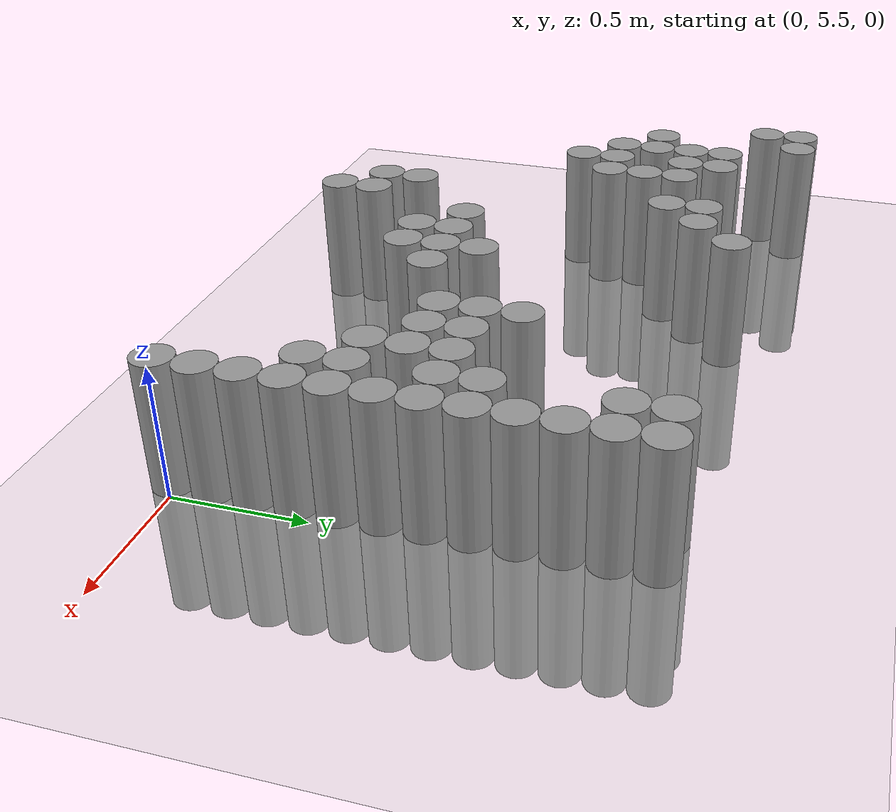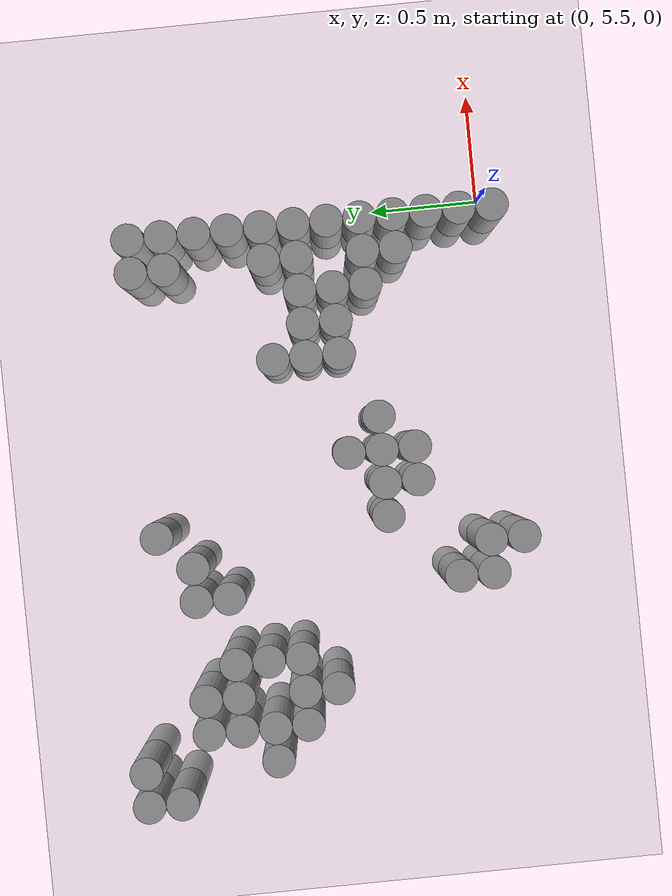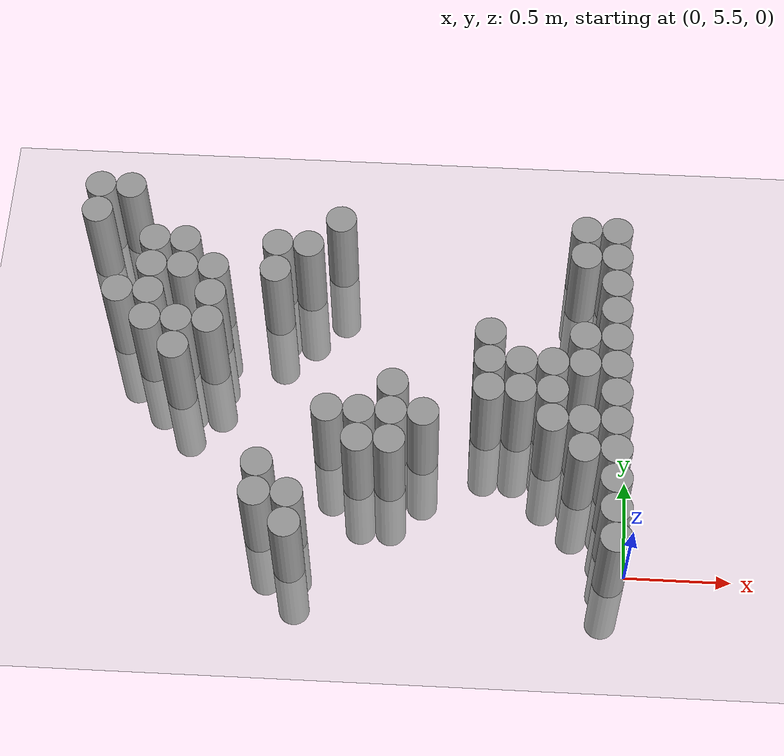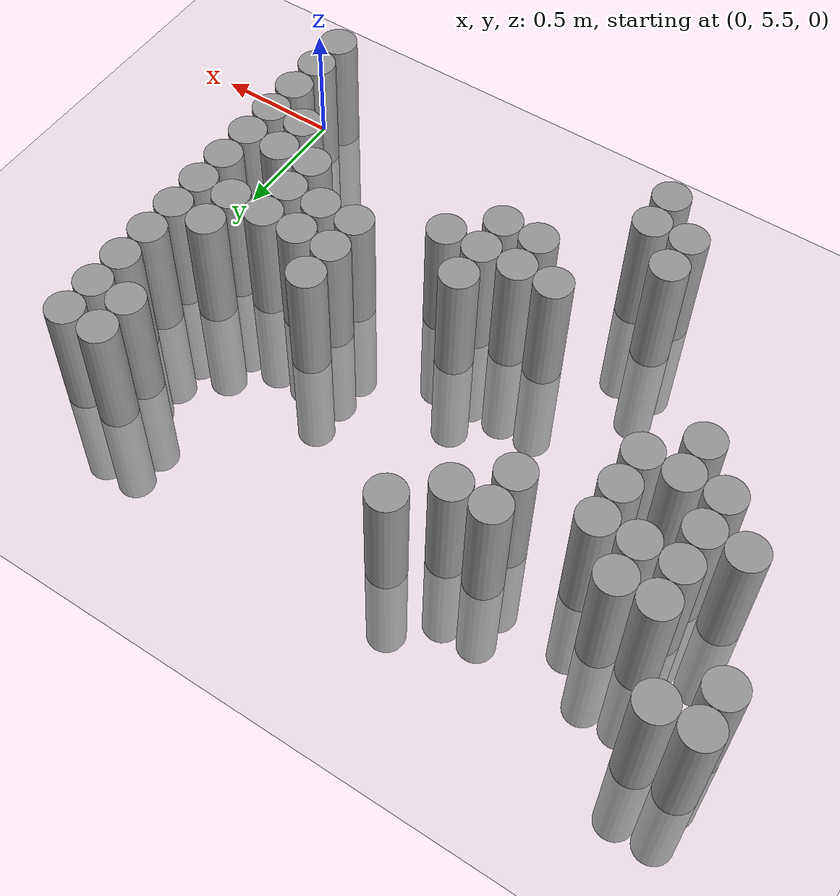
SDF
<sdf version="1.6">
 <world name="default">
  <model name="ground_plane">
   <static>1</static>
   <static>1</static>
   <link name="link">
    <collision name="collision">
     <geometry><plane><normal>0 0 1</normal><size>100 100</size></plane></geometry>
     <surface><friction><ode><mu>100</mu><mu2>50</mu2></ode></friction></surface>
    </collision>
    <visual name="visual">
     <cast_shadows>0</cast_shadows>
     <geometry><plane><normal>0 0 1</normal><size>100 100</size></plane></geometry>
     <material>
      <script><uri>file://media/materials/scripts/gazebo.material</uri><name>Gazebo/Grey</name></script>
     </material>
    </visual>
   </link>
  </model>
  <model name="unit_cylinder_166">
   <static>1</static>
   <pose>-2.625000 7.125000 0.000000 0.000000 0.000000 0.000000</pose>
   <link name="link">
    <inertial>
     <mass>1</mass>
     <inertia><ixx>0.145833</ixx><ixy>0</ixy><ixz>0</ixz><iyy>0.145833</iyy><iyz>0</iyz><izz>0.125</izz></inertia>
    </inertial>
    <collision name="collision">
     <geometry><cylinder><radius>0.075000</radius><length>1</length></cylinder></geometry>
    </collision>
    <visual name="visual">
     <geometry><cylinder><radius>0.075000</radius><length>1</length></cylinder></geometry>
     <material>
      <script><name>Gazebo/Grey</name><uri>file://media/materials/scripts/gazebo.material</uri></script>
     </material>
    </visual>
   </link>
  </model>
  <model name="unit_cylinder_167">
   <static>1</static>
   <pose>-2.625000 7.275000 0.000000 0.000000 0.000000 0.000000</pose>
   <link name="link">
    <inertial>
     <mass>1</mass>
     <inertia><ixx>0.145833</ixx><ixy>0</ixy><ixz>0</ixz><iyy>0.145833</iyy><iyz>0</iyz><izz>0.125</izz></inertia>
    </inertial>
    <collision name="collision">
     <geometry><cylinder><radius>0.075000</radius><length>1</length></cylinder></geometry>
    </collision>
    <visual name="visual">
     <geometry><cylinder><radius>0.075000</radius><length>1</length></cylinder></geometry>
     <material>
      <script><name>Gazebo/Grey</name><uri>file://media/materials/scripts/gazebo.material</uri></script>
     </material>
    </visual>
   </link>
  </model>
  <model name="unit_cylinder_168">
   <static>1</static>
   <pose>-2.475000 6.675000 0.000000 0.000000 0.000000 0.000000</pose>
   <link name="link">
    <inertial>
     <mass>1</mass>
     <inertia><ixx>0.145833</ixx><ixy>0</ixy><ixz>0</ixz><iyy>0.145833</iyy><iyz>0</iyz><izz>0.125</izz></inertia>
    </inertial>
    <collision name="collision">
     <geometry><cylinder><radius>0.075000</radius><length>1</length></cylinder></geometry>
    </collision>
    <visual name="visual">
     <geometry><cylinder><radius>0.075000</radius><length>1</length></cylinder></geometry>
     <material>
      <script><name>Gazebo/Grey</name><uri>file://media/materials/scripts/gazebo.material</uri></script>
     </material>
    </visual>
   </link>
  </model>
  <model name="unit_cylinder_169">
   <static>1</static>
   <pose>-2.475000 7.275000 0.000000 0.000000 0.000000 0.000000</pose>
   <link name="link">
    <inertial>
     <mass>1</mass>
     <inertia><ixx>0.145833</ixx><ixy>0</ixy><ixz>0</ixz><iyy>0.145833</iyy><iyz>0</iyz><izz>0.125</izz></inertia>
    </inertial>
    <collision name="collision">
     <geometry><cylinder><radius>0.075000</radius><length>1</length></cylinder></geometry>
    </collision>
    <visual name="visual">
     <geometry><cylinder><radius>0.075000</radius><length>1</length></cylinder></geometry>
     <material>
      <script><name>Gazebo/Grey</name><uri>file://media/materials/scripts/gazebo.material</uri></script>
     </material>
    </visual>
   </link>
  </model>
  <model name="unit_cylinder_172">
   <static>1</static>
   <pose>-2.325000 6.525000 0.000000 0.000000 0.000000 0.000000</pose>
   <link name="link">
    <inertial>
     <mass>1</mass>
     <inertia><ixx>0.145833</ixx><ixy>0</ixy><ixz>0</ixz><iyy>0.145833</iyy><iyz>0</iyz><izz>0.125</izz></inertia>
    </inertial>
    <collision name="collision">
     <geometry><cylinder><radius>0.075000</radius><length>1</length></cylinder></geometry>
    </collision>
    <visual name="visual">
     <geometry><cylinder><radius>0.075000</radius><length>1</length></cylinder></geometry>
     <material>
      <script><name>Gazebo/Grey</name><uri>file://media/materials/scripts/gazebo.material</uri></script>
     </material>
    </visual>
   </link>
  </model>
  <model name="unit_cylinder_173">
   <static>1</static>
   <pose>-2.325000 6.675000 0.000000 0.000000 0.000000 0.000000</pose>
   <link name="link">
    <inertial>
     <mass>1</mass>
     <inertia><ixx>0.145833</ixx><ixy>0</ixy><ixz>0</ixz><iyy>0.145833</iyy><iyz>0</iyz><izz>0.125</izz></inertia>
    </inertial>
    <collision name="collision">
     <geometry><cylinder><radius>0.075000</radius><length>1</length></cylinder></geometry>
    </collision>
    <visual name="visual">
     <geometry><cylinder><radius>0.075000</radius><length>1</length></cylinder></geometry>
     <material>
      <script><name>Gazebo/Grey</name><uri>file://media/materials/scripts/gazebo.material</uri></script>
     </material>
    </visual>
   </link>
  </model>
  <model name="unit_cylinder_174">
   <static>1</static>
   <pose>-2.325000 6.825000 0.000000 0.000000 0.000000 0.000000</pose>
   <link name="link">
    <inertial>
     <mass>1</mass>
     <inertia><ixx>0.145833</ixx><ixy>0</ixy><ixz>0</ixz><iyy>0.145833</iyy><iyz>0</iyz><izz>0.125</izz></inertia>
    </inertial>
    <collision name="collision">
     <geometry><cylinder><radius>0.075000</radius><length>1</length></cylinder></geometry>
    </collision>
    <visual name="visual">
     <geometry><cylinder><radius>0.075000</radius><length>1</length></cylinder></geometry>
     <material>
      <script><name>Gazebo/Grey</name><uri>file://media/materials/scripts/gazebo.material</uri></script>
     </material>
    </visual>
   </link>
  </model>
  <model name="unit_cylinder_175">
   <static>1</static>
   <pose>-2.325000 6.975000 0.000000 0.000000 0.000000 0.000000</pose>
   <link name="link">
    <inertial>
     <mass>1</mass>
     <inertia><ixx>0.145833</ixx><ixy>0</ixy><ixz>0</ixz><iyy>0.145833</iyy><iyz>0</iyz><izz>0.125</izz></inertia>
    </inertial>
    <collision name="collision">
     <geometry><cylinder><radius>0.075000</radius><length>1</length></cylinder></geometry>
    </collision>
    <visual name="visual">
     <geometry><cylinder><radius>0.075000</radius><length>1</length></cylinder></geometry>
     <material>
      <script><name>Gazebo/Grey</name><uri>file://media/materials/scripts/gazebo.material</uri></script>
     </material>
    </visual>
   </link>
  </model>
  <model name="unit_cylinder_179">
   <static>1</static>
   <pose>-2.175000 6.375000 0.000000 0.000000 0.000000 0.000000</pose>
   <link name="link">
    <inertial>
     <mass>1</mass>
     <inertia><ixx>0.145833</ixx><ixy>0</ixy><ixz>0</ixz><iyy>0.145833</iyy><iyz>0</iyz><izz>0.125</izz></inertia>
    </inertial>
    <collision name="collision">
     <geometry><cylinder><radius>0.075000</radius><length>1</length></cylinder></geometry>
    </collision>
    <visual name="visual">
     <geometry><cylinder><radius>0.075000</radius><length>1</length></cylinder></geometry>
     <material>
      <script><name>Gazebo/Grey</name><uri>file://media/materials/scripts/gazebo.material</uri></script>
     </material>
    </visual>
   </link>
  </model>
  <model name="unit_cylinder_180">
   <static>1</static>
   <pose>-2.175000 6.525000 0.000000 0.000000 0.000000 0.000000</pose>
   <link name="link">
    <inertial>
     <mass>1</mass>
     <inertia><ixx>0.145833</ixx><ixy>0</ixy><ixz>0</ixz><iyy>0.145833</iyy><iyz>0</iyz><izz>0.125</izz></inertia>
    </inertial>
    <collision name="collision">
     <geometry><cylinder><radius>0.075000</radius><length>1</length></cylinder></geometry>
    </collision>
    <visual name="visual">
     <geometry><cylinder><radius>0.075000</radius><length>1</length></cylinder></geometry>
     <material>
      <script><name>Gazebo/Grey</name><uri>file://media/materials/scripts/gazebo.material</uri></script>
     </material>
    </visual>
   </link>
  </model>
  <model name="unit_cylinder_181">
   <static>1</static>
   <pose>-2.175000 6.825000 0.000000 0.000000 0.000000 0.000000</pose>
   <link name="link">
    <inertial>
     <mass>1</mass>
     <inertia><ixx>0.145833</ixx><ixy>0</ixy><ixz>0</ixz><iyy>0.145833</iyy><iyz>0</iyz><izz>0.125</izz></inertia>
    </inertial>
    <collision name="collision">
     <geometry><cylinder><radius>0.075000</radius><length>1</length></cylinder></geometry>
    </collision>
    <visual name="visual">
     <geometry><cylinder><radius>0.075000</radius><length>1</length></cylinder></geometry>
     <material>
      <script><name>Gazebo/Grey</name><uri>file://media/materials/scripts/gazebo.material</uri></script>
     </material>
    </visual>
   </link>
  </model>
  <model name="unit_cylinder_182">
   <static>1</static>
   <pose>-2.175000 6.975000 0.000000 0.000000 0.000000 0.000000</pose>
   <link name="link">
    <inertial>
     <mass>1</mass>
     <inertia><ixx>0.145833</ixx><ixy>0</ixy><ixz>0</ixz><iyy>0.145833</iyy><iyz>0</iyz><izz>0.125</izz></inertia>
    </inertial>
    <collision name="collision">
     <geometry><cylinder><radius>0.075000</radius><length>1</length></cylinder></geometry>
    </collision>
    <visual name="visual">
     <geometry><cylinder><radius>0.075000</radius><length>1</length></cylinder></geometry>
     <material>
      <script><name>Gazebo/Grey</name><uri>file://media/materials/scripts/gazebo.material</uri></script>
     </material>
    </visual>
   </link>
  </model>
  <model name="unit_cylinder_186">
   <static>1</static>
   <pose>-2.025000 6.525000 0.000000 0.000000 0.000000 0.000000</pose>
   <link name="link">
    <inertial>
     <mass>1</mass>
     <inertia><ixx>0.145833</ixx><ixy>0</ixy><ixz>0</ixz><iyy>0.145833</iyy><iyz>0</iyz><izz>0.125</izz></inertia>
    </inertial>
    <collision name="collision">
     <geometry><cylinder><radius>0.075000</radius><length>1</length></cylinder></geometry>
    </collision>
    <visual name="visual">
     <geometry><cylinder><radius>0.075000</radius><length>1</length></cylinder></geometry>
     <material>
      <script><name>Gazebo/Grey</name><uri>file://media/materials/scripts/gazebo.material</uri></script>
     </material>
    </visual>
   </link>
  </model>
  <model name="unit_cylinder_187">
   <static>1</static>
   <pose>-2.025000 6.675000 0.000000 0.000000 0.000000 0.000000</pose>
   <link name="link">
    <inertial>
     <mass>1</mass>
     <inertia><ixx>0.145833</ixx><ixy>0</ixy><ixz>0</ixz><iyy>0.145833</iyy><iyz>0</iyz><izz>0.125</izz></inertia>
    </inertial>
    <collision name="collision">
     <geometry><cylinder><radius>0.075000</radius><length>1</length></cylinder></geometry>
    </collision>
    <visual name="visual">
     <geometry><cylinder><radius>0.075000</radius><length>1</length></cylinder></geometry>
     <material>
      <script><name>Gazebo/Grey</name><uri>file://media/materials/scripts/gazebo.material</uri></script>
     </material>
    </visual>
   </link>
  </model>
  <model name="unit_cylinder_188">
   <static>1</static>
   <pose>-2.025000 6.825000 0.000000 0.000000 0.000000 0.000000</pose>
   <link name="link">
    <inertial>
     <mass>1</mass>
     <inertia><ixx>0.145833</ixx><ixy>0</ixy><ixz>0</ixz><iyy>0.145833</iyy><iyz>0</iyz><izz>0.125</izz></inertia>
    </inertial>
    <collision name="collision">
     <geometry><cylinder><radius>0.075000</radius><length>1</length></cylinder></geometry>
    </collision>
    <visual name="visual">
     <geometry><cylinder><radius>0.075000</radius><length>1</length></cylinder></geometry>
     <material>
      <script><name>Gazebo/Grey</name><uri>file://media/materials/scripts/gazebo.material</uri></script>
     </material>
    </visual>
   </link>
  </model>
  <model name="unit_cylinder_196">
   <static>1</static>
   <pose>-1.725000 5.625000 0.000000 0.000000 0.000000 0.000000</pose>
   <link name="link">
    <inertial>
     <mass>1</mass>
     <inertia><ixx>0.145833</ixx><ixy>0</ixy><ixz>0</ixz><iyy>0.145833</iyy><iyz>0</iyz><izz>0.125</izz></inertia>
    </inertial>
    <collision name="collision">
     <geometry><cylinder><radius>0.075000</radius><length>1</length></cylinder></geometry>
    </collision>
    <visual name="visual">
     <geometry><cylinder><radius>0.075000</radius><length>1</length></cylinder></geometry>
     <material>
      <script><name>Gazebo/Grey</name><uri>file://media/materials/scripts/gazebo.material</uri></script>
     </material>
    </visual>
   </link>
  </model>
  <model name="unit_cylinder_197">
   <static>1</static>
   <pose>-1.725000 5.775000 0.000000 0.000000 0.000000 0.000000</pose>
   <link name="link">
    <inertial>
     <mass>1</mass>
     <inertia><ixx>0.145833</ixx><ixy>0</ixy><ixz>0</ixz><iyy>0.145833</iyy><iyz>0</iyz><izz>0.125</izz></inertia>
    </inertial>
    <collision name="collision">
     <geometry><cylinder><radius>0.075000</radius><length>1</length></cylinder></geometry>
    </collision>
    <visual name="visual">
     <geometry><cylinder><radius>0.075000</radius><length>1</length></cylinder></geometry>
     <material>
      <script><name>Gazebo/Grey</name><uri>file://media/materials/scripts/gazebo.material</uri></script>
     </material>
    </visual>
   </link>
  </model>
  <model name="unit_cylinder_198">
   <static>1</static>
   <pose>-1.725000 6.825000 0.000000 0.000000 0.000000 0.000000</pose>
   <link name="link">
    <inertial>
     <mass>1</mass>
     <inertia><ixx>0.145833</ixx><ixy>0</ixy><ixz>0</ixz><iyy>0.145833</iyy><iyz>0</iyz><izz>0.125</izz></inertia>
    </inertial>
    <collision name="collision">
     <geometry><cylinder><radius>0.075000</radius><length>1</length></cylinder></geometry>
    </collision>
    <visual name="visual">
     <geometry><cylinder><radius>0.075000</radius><length>1</length></cylinder></geometry>
     <material>
      <script><name>Gazebo/Grey</name><uri>file://media/materials/scripts/gazebo.material</uri></script>
     </material>
    </visual>
   </link>
  </model>
  <model name="unit_cylinder_199">
   <static>1</static>
   <pose>-1.725000 6.975000 0.000000 0.000000 0.000000 0.000000</pose>
   <link name="link">
    <inertial>
     <mass>1</mass>
     <inertia><ixx>0.145833</ixx><ixy>0</ixy><ixz>0</ixz><iyy>0.145833</iyy><iyz>0</iyz><izz>0.125</izz></inertia>
    </inertial>
    <collision name="collision">
     <geometry><cylinder><radius>0.075000</radius><length>1</length></cylinder></geometry>
    </collision>
    <visual name="visual">
     <geometry><cylinder><radius>0.075000</radius><length>1</length></cylinder></geometry>
     <material>
      <script><name>Gazebo/Grey</name><uri>file://media/materials/scripts/gazebo.material</uri></script>
     </material>
    </visual>
   </link>
  </model>
  <model name="unit_cylinder_202">
   <static>1</static>
   <pose>-1.575000 5.475000 0.000000 0.000000 0.000000 0.000000</pose>
   <link name="link">
    <inertial>
     <mass>1</mass>
     <inertia><ixx>0.145833</ixx><ixy>0</ixy><ixz>0</ixz><iyy>0.145833</iyy><iyz>0</iyz><izz>0.125</izz></inertia>
    </inertial>
    <collision name="collision">
     <geometry><cylinder><radius>0.075000</radius><length>1</length></cylinder></geometry>
    </collision>
    <visual name="visual">
     <geometry><cylinder><radius>0.075000</radius><length>1</length></cylinder></geometry>
     <material>
      <script><name>Gazebo/Grey</name><uri>file://media/materials/scripts/gazebo.material</uri></script>
     </material>
    </visual>
   </link>
  </model>
  <model name="unit_cylinder_203">
   <static>1</static>
   <pose>-1.575000 5.625000 0.000000 0.000000 0.000000 0.000000</pose>
   <link name="link">
    <inertial>
     <mass>1</mass>
     <inertia><ixx>0.145833</ixx><ixy>0</ixy><ixz>0</ixz><iyy>0.145833</iyy><iyz>0</iyz><izz>0.125</izz></inertia>
    </inertial>
    <collision name="collision">
     <geometry><cylinder><radius>0.075000</radius><length>1</length></cylinder></geometry>
    </collision>
    <visual name="visual">
     <geometry><cylinder><radius>0.075000</radius><length>1</length></cylinder></geometry>
     <material>
      <script><name>Gazebo/Grey</name><uri>file://media/materials/scripts/gazebo.material</uri></script>
     </material>
    </visual>
   </link>
  </model>
  <model name="unit_cylinder_204">
   <static>1</static>
   <pose>-1.575000 6.975000 0.000000 0.000000 0.000000 0.000000</pose>
   <link name="link">
    <inertial>
     <mass>1</mass>
     <inertia><ixx>0.145833</ixx><ixy>0</ixy><ixz>0</ixz><iyy>0.145833</iyy><iyz>0</iyz><izz>0.125</izz></inertia>
    </inertial>
    <collision name="collision">
     <geometry><cylinder><radius>0.075000</radius><length>1</length></cylinder></geometry>
    </collision>
    <visual name="visual">
     <geometry><cylinder><radius>0.075000</radius><length>1</length></cylinder></geometry>
     <material>
      <script><name>Gazebo/Grey</name><uri>file://media/materials/scripts/gazebo.material</uri></script>
     </material>
    </visual>
   </link>
  </model>
  <model name="unit_cylinder_208">
   <static>1</static>
   <pose>-1.425000 6.075000 0.000000 0.000000 0.000000 0.000000</pose>
   <link name="link">
    <inertial>
     <mass>1</mass>
     <inertia><ixx>0.145833</ixx><ixy>0</ixy><ixz>0</ixz><iyy>0.145833</iyy><iyz>0</iyz><izz>0.125</izz></inertia>
    </inertial>
    <collision name="collision">
     <geometry><cylinder><radius>0.075000</radius><length>1</length></cylinder></geometry>
    </collision>
    <visual name="visual">
     <geometry><cylinder><radius>0.075000</radius><length>1</length></cylinder></geometry>
     <material>
      <script><name>Gazebo/Grey</name><uri>file://media/materials/scripts/gazebo.material</uri></script>
     </material>
    </visual>
   </link>
  </model>
  <model name="unit_cylinder_209">
   <static>1</static>
   <pose>-1.425000 7.125000 0.000000 0.000000 0.000000 0.000000</pose>
   <link name="link">
    <inertial>
     <mass>1</mass>
     <inertia><ixx>0.145833</ixx><ixy>0</ixy><ixz>0</ixz><iyy>0.145833</iyy><iyz>0</iyz><izz>0.125</izz></inertia>
    </inertial>
    <collision name="collision">
     <geometry><cylinder><radius>0.075000</radius><length>1</length></cylinder></geometry>
    </collision>
    <visual name="visual">
     <geometry><cylinder><radius>0.075000</radius><length>1</length></cylinder></geometry>
     <material>
      <script><name>Gazebo/Grey</name><uri>file://media/materials/scripts/gazebo.material</uri></script>
     </material>
    </visual>
   </link>
  </model>
  <model name="unit_cylinder_213">
   <static>1</static>
   <pose>-1.275000 5.925000 0.000000 0.000000 0.000000 0.000000</pose>
   <link name="link">
    <inertial>
     <mass>1</mass>
     <inertia><ixx>0.145833</ixx><ixy>0</ixy><ixz>0</ixz><iyy>0.145833</iyy><iyz>0</iyz><izz>0.125</izz></inertia>
    </inertial>
    <collision name="collision">
     <geometry><cylinder><radius>0.075000</radius><length>1</length></cylinder></geometry>
    </collision>
    <visual name="visual">
     <geometry><cylinder><radius>0.075000</radius><length>1</length></cylinder></geometry>
     <material>
      <script><name>Gazebo/Grey</name><uri>file://media/materials/scripts/gazebo.material</uri></script>
     </material>
    </visual>
   </link>
  </model>
  <model name="unit_cylinder_214">
   <static>1</static>
   <pose>-1.275000 6.075000 0.000000 0.000000 0.000000 0.000000</pose>
   <link name="link">
    <inertial>
     <mass>1</mass>
     <inertia><ixx>0.145833</ixx><ixy>0</ixy><ixz>0</ixz><iyy>0.145833</iyy><iyz>0</iyz><izz>0.125</izz></inertia>
    </inertial>
    <collision name="collision">
     <geometry><cylinder><radius>0.075000</radius><length>1</length></cylinder></geometry>
    </collision>
    <visual name="visual">
     <geometry><cylinder><radius>0.075000</radius><length>1</length></cylinder></geometry>
     <material>
      <script><name>Gazebo/Grey</name><uri>file://media/materials/scripts/gazebo.material</uri></script>
     </material>
    </visual>
   </link>
  </model>
  <model name="unit_cylinder_218">
   <static>1</static>
   <pose>-1.125000 5.925000 0.000000 0.000000 0.000000 0.000000</pose>
   <link name="link">
    <inertial>
     <mass>1</mass>
     <inertia><ixx>0.145833</ixx><ixy>0</ixy><ixz>0</ixz><iyy>0.145833</iyy><iyz>0</iyz><izz>0.125</izz></inertia>
    </inertial>
    <collision name="collision">
     <geometry><cylinder><radius>0.075000</radius><length>1</length></cylinder></geometry>
    </collision>
    <visual name="visual">
     <geometry><cylinder><radius>0.075000</radius><length>1</length></cylinder></geometry>
     <material>
      <script><name>Gazebo/Grey</name><uri>file://media/materials/scripts/gazebo.material</uri></script>
     </material>
    </visual>
   </link>
  </model>
  <model name="unit_cylinder_219">
   <static>1</static>
   <pose>-1.125000 6.075000 0.000000 0.000000 0.000000 0.000000</pose>
   <link name="link">
    <inertial>
     <mass>1</mass>
     <inertia><ixx>0.145833</ixx><ixy>0</ixy><ixz>0</ixz><iyy>0.145833</iyy><iyz>0</iyz><izz>0.125</izz></inertia>
    </inertial>
    <collision name="collision">
     <geometry><cylinder><radius>0.075000</radius><length>1</length></cylinder></geometry>
    </collision>
    <visual name="visual">
     <geometry><cylinder><radius>0.075000</radius><length>1</length></cylinder></geometry>
     <material>
      <script><name>Gazebo/Grey</name><uri>file://media/materials/scripts/gazebo.material</uri></script>
     </material>
    </visual>
   </link>
  </model>
  <model name="unit_cylinder_220">
   <static>1</static>
   <pose>-1.125000 6.225000 0.000000 0.000000 0.000000 0.000000</pose>
   <link name="link">
    <inertial>
     <mass>1</mass>
     <inertia><ixx>0.145833</ixx><ixy>0</ixy><ixz>0</ixz><iyy>0.145833</iyy><iyz>0</iyz><izz>0.125</izz></inertia>
    </inertial>
    <collision name="collision">
     <geometry><cylinder><radius>0.075000</radius><length>1</length></cylinder></geometry>
    </collision>
    <visual name="visual">
     <geometry><cylinder><radius>0.075000</radius><length>1</length></cylinder></geometry>
     <material>
      <script><name>Gazebo/Grey</name><uri>file://media/materials/scripts/gazebo.material</uri></script>
     </material>
    </visual>
   </link>
  </model>
  <model name="unit_cylinder_223">
   <static>1</static>
   <pose>-0.975000 6.075000 0.000000 0.000000 0.000000 0.000000</pose>
   <link name="link">
    <inertial>
     <mass>1</mass>
     <inertia><ixx>0.145833</ixx><ixy>0</ixy><ixz>0</ixz><iyy>0.145833</iyy><iyz>0</iyz><izz>0.125</izz></inertia>
    </inertial>
    <collision name="collision">
     <geometry><cylinder><radius>0.075000</radius><length>1</length></cylinder></geometry>
    </collision>
    <visual name="visual">
     <geometry><cylinder><radius>0.075000</radius><length>1</length></cylinder></geometry>
     <material>
      <script><name>Gazebo/Grey</name><uri>file://media/materials/scripts/gazebo.material</uri></script>
     </material>
    </visual>
   </link>
  </model>
  <model name="unit_cylinder_224">
   <static>1</static>
   <pose>-0.675000 6.225000 0.000000 0.000000 0.000000 0.000000</pose>
   <link name="link">
    <inertial>
     <mass>1</mass>
     <inertia><ixx>0.145833</ixx><ixy>0</ixy><ixz>0</ixz><iyy>0.145833</iyy><iyz>0</iyz><izz>0.125</izz></inertia>
    </inertial>
    <collision name="collision">
     <geometry><cylinder><radius>0.075000</radius><length>1</length></cylinder></geometry>
    </collision>
    <visual name="visual">
     <geometry><cylinder><radius>0.075000</radius><length>1</length></cylinder></geometry>
     <material>
      <script><name>Gazebo/Grey</name><uri>file://media/materials/scripts/gazebo.material</uri></script>
     </material>
    </visual>
   </link>
  </model>
  <model name="unit_cylinder_225">
   <static>1</static>
   <pose>-0.675000 6.375000 0.000000 0.000000 0.000000 0.000000</pose>
   <link name="link">
    <inertial>
     <mass>1</mass>
     <inertia><ixx>0.145833</ixx><ixy>0</ixy><ixz>0</ixz><iyy>0.145833</iyy><iyz>0</iyz><izz>0.125</izz></inertia>
    </inertial>
    <collision name="collision">
     <geometry><cylinder><radius>0.075000</radius><length>1</length></cylinder></geometry>
    </collision>
    <visual name="visual">
     <geometry><cylinder><radius>0.075000</radius><length>1</length></cylinder></geometry>
     <material>
      <script><name>Gazebo/Grey</name><uri>file://media/materials/scripts/gazebo.material</uri></script>
     </material>
    </visual>
   </link>
  </model>
  <model name="unit_cylinder_226">
   <static>1</static>
   <pose>-0.675000 6.525000 0.000000 0.000000 0.000000 0.000000</pose>
   <link name="link">
    <inertial>
     <mass>1</mass>
     <inertia><ixx>0.145833</ixx><ixy>0</ixy><ixz>0</ixz><iyy>0.145833</iyy><iyz>0</iyz><izz>0.125</izz></inertia>
    </inertial>
    <collision name="collision">
     <geometry><cylinder><radius>0.075000</radius><length>1</length></cylinder></geometry>
    </collision>
    <visual name="visual">
     <geometry><cylinder><radius>0.075000</radius><length>1</length></cylinder></geometry>
     <material>
      <script><name>Gazebo/Grey</name><uri>file://media/materials/scripts/gazebo.material</uri></script>
     </material>
    </visual>
   </link>
  </model>
  <model name="unit_cylinder_227">
   <static>1</static>
   <pose>-0.525000 6.225000 0.000000 0.000000 0.000000 0.000000</pose>
   <link name="link">
    <inertial>
     <mass>1</mass>
     <inertia><ixx>0.145833</ixx><ixy>0</ixy><ixz>0</ixz><iyy>0.145833</iyy><iyz>0</iyz><izz>0.125</izz></inertia>
    </inertial>
    <collision name="collision">
     <geometry><cylinder><radius>0.075000</radius><length>1</length></cylinder></geometry>
    </collision>
    <visual name="visual">
     <geometry><cylinder><radius>0.075000</radius><length>1</length></cylinder></geometry>
     <material>
      <script><name>Gazebo/Grey</name><uri>file://media/materials/scripts/gazebo.material</uri></script>
     </material>
    </visual>
   </link>
  </model>
  <model name="unit_cylinder_228">
   <static>1</static>
   <pose>-0.525000 6.375000 0.000000 0.000000 0.000000 0.000000</pose>
   <link name="link">
    <inertial>
     <mass>1</mass>
     <inertia><ixx>0.145833</ixx><ixy>0</ixy><ixz>0</ixz><iyy>0.145833</iyy><iyz>0</iyz><izz>0.125</izz></inertia>
    </inertial>
    <collision name="collision">
     <geometry><cylinder><radius>0.075000</radius><length>1</length></cylinder></geometry>
    </collision>
    <visual name="visual">
     <geometry><cylinder><radius>0.075000</radius><length>1</length></cylinder></geometry>
     <material>
      <script><name>Gazebo/Grey</name><uri>file://media/materials/scripts/gazebo.material</uri></script>
     </material>
    </visual>
   </link>
  </model>
  <model name="unit_cylinder_230">
   <static>1</static>
   <pose>-0.375000 6.075000 0.000000 0.000000 0.000000 0.000000</pose>
   <link name="link">
    <inertial>
     <mass>1</mass>
     <inertia><ixx>0.145833</ixx><ixy>0</ixy><ixz>0</ixz><iyy>0.145833</iyy><iyz>0</iyz><izz>0.125</izz></inertia>
    </inertial>
    <collision name="collision">
     <geometry><cylinder><radius>0.075000</radius><length>1</length></cylinder></geometry>
    </collision>
    <visual name="visual">
     <geometry><cylinder><radius>0.075000</radius><length>1</length></cylinder></geometry>
     <material>
      <script><name>Gazebo/Grey</name><uri>file://media/materials/scripts/gazebo.material</uri></script>
     </material>
    </visual>
   </link>
  </model>
  <model name="unit_cylinder_231">
   <static>1</static>
   <pose>-0.375000 6.225000 0.000000 0.000000 0.000000 0.000000</pose>
   <link name="link">
    <inertial>
     <mass>1</mass>
     <inertia><ixx>0.145833</ixx><ixy>0</ixy><ixz>0</ixz><iyy>0.145833</iyy><iyz>0</iyz><izz>0.125</izz></inertia>
    </inertial>
    <collision name="collision">
     <geometry><cylinder><radius>0.075000</radius><length>1</length></cylinder></geometry>
    </collision>
    <visual name="visual">
     <geometry><cylinder><radius>0.075000</radius><length>1</length></cylinder></geometry>
     <material>
      <script><name>Gazebo/Grey</name><uri>file://media/materials/scripts/gazebo.material</uri></script>
     </material>
    </visual>
   </link>
  </model>
  <model name="unit_cylinder_232">
   <static>1</static>
   <pose>-0.375000 6.375000 0.000000 0.000000 0.000000 0.000000</pose>
   <link name="link">
    <inertial>
     <mass>1</mass>
     <inertia><ixx>0.145833</ixx><ixy>0</ixy><ixz>0</ixz><iyy>0.145833</iyy><iyz>0</iyz><izz>0.125</izz></inertia>
    </inertial>
    <collision name="collision">
     <geometry><cylinder><radius>0.075000</radius><length>1</length></cylinder></geometry>
    </collision>
    <visual name="visual">
     <geometry><cylinder><radius>0.075000</radius><length>1</length></cylinder></geometry>
     <material>
      <script><name>Gazebo/Grey</name><uri>file://media/materials/scripts/gazebo.material</uri></script>
     </material>
    </visual>
   </link>
  </model>
  <model name="unit_cylinder_238">
   <static>1</static>
   <pose>-0.225000 5.925000 0.000000 0.000000 0.000000 0.000000</pose>
   <link name="link">
    <inertial>
     <mass>1</mass>
     <inertia><ixx>0.145833</ixx><ixy>0</ixy><ixz>0</ixz><iyy>0.145833</iyy><iyz>0</iyz><izz>0.125</izz></inertia>
    </inertial>
    <collision name="collision">
     <geometry><cylinder><radius>0.075000</radius><length>1</length></cylinder></geometry>
    </collision>
    <visual name="visual">
     <geometry><cylinder><radius>0.075000</radius><length>1</length></cylinder></geometry>
     <material>
      <script><name>Gazebo/Grey</name><uri>file://media/materials/scripts/gazebo.material</uri></script>
     </material>
    </visual>
   </link>
  </model>
  <model name="unit_cylinder_239">
   <static>1</static>
   <pose>-0.225000 6.075000 0.000000 0.000000 0.000000 0.000000</pose>
   <link name="link">
    <inertial>
     <mass>1</mass>
     <inertia><ixx>0.145833</ixx><ixy>0</ixy><ixz>0</ixz><iyy>0.145833</iyy><iyz>0</iyz><izz>0.125</izz></inertia>
    </inertial>
    <collision name="collision">
     <geometry><cylinder><radius>0.075000</radius><length>1</length></cylinder></geometry>
    </collision>
    <visual name="visual">
     <geometry><cylinder><radius>0.075000</radius><length>1</length></cylinder></geometry>
     <material>
      <script><name>Gazebo/Grey</name><uri>file://media/materials/scripts/gazebo.material</uri></script>
     </material>
    </visual>
   </link>
  </model>
  <model name="unit_cylinder_240">
   <static>1</static>
   <pose>-0.225000 6.375000 0.000000 0.000000 0.000000 0.000000</pose>
   <link name="link">
    <inertial>
     <mass>1</mass>
     <inertia><ixx>0.145833</ixx><ixy>0</ixy><ixz>0</ixz><iyy>0.145833</iyy><iyz>0</iyz><izz>0.125</izz></inertia>
    </inertial>
    <collision name="collision">
     <geometry><cylinder><radius>0.075000</radius><length>1</length></cylinder></geometry>
    </collision>
    <visual name="visual">
     <geometry><cylinder><radius>0.075000</radius><length>1</length></cylinder></geometry>
     <material>
      <script><name>Gazebo/Grey</name><uri>file://media/materials/scripts/gazebo.material</uri></script>
     </material>
    </visual>
   </link>
  </model>
  <model name="unit_cylinder_241">
   <static>1</static>
   <pose>-0.225000 6.525000 0.000000 0.000000 0.000000 0.000000</pose>
   <link name="link">
    <inertial>
     <mass>1</mass>
     <inertia><ixx>0.145833</ixx><ixy>0</ixy><ixz>0</ixz><iyy>0.145833</iyy><iyz>0</iyz><izz>0.125</izz></inertia>
    </inertial>
    <collision name="collision">
     <geometry><cylinder><radius>0.075000</radius><length>1</length></cylinder></geometry>
    </collision>
    <visual name="visual">
     <geometry><cylinder><radius>0.075000</radius><length>1</length></cylinder></geometry>
     <material>
      <script><name>Gazebo/Grey</name><uri>file://media/materials/scripts/gazebo.material</uri></script>
     </material>
    </visual>
   </link>
  </model>
  <model name="unit_cylinder_242">
   <static>1</static>
   <pose>-0.225000 6.975000 0.000000 0.000000 0.000000 0.000000</pose>
   <link name="link">
    <inertial>
     <mass>1</mass>
     <inertia><ixx>0.145833</ixx><ixy>0</ixy><ixz>0</ixz><iyy>0.145833</iyy><iyz>0</iyz><izz>0.125</izz></inertia>
    </inertial>
    <collision name="collision">
     <geometry><cylinder><radius>0.075000</radius><length>1</length></cylinder></geometry>
    </collision>
    <visual name="visual">
     <geometry><cylinder><radius>0.075000</radius><length>1</length></cylinder></geometry>
     <material>
      <script><name>Gazebo/Grey</name><uri>file://media/materials/scripts/gazebo.material</uri></script>
     </material>
    </visual>
   </link>
  </model>
  <model name="unit_cylinder_243">
   <static>1</static>
   <pose>-0.225000 7.125000 0.000000 0.000000 0.000000 0.000000</pose>
   <link name="link">
    <inertial>
     <mass>1</mass>
     <inertia><ixx>0.145833</ixx><ixy>0</ixy><ixz>0</ixz><iyy>0.145833</iyy><iyz>0</iyz><izz>0.125</izz></inertia>
    </inertial>
    <collision name="collision">
     <geometry><cylinder><radius>0.075000</radius><length>1</length></cylinder></geometry>
    </collision>
    <visual name="visual">
     <geometry><cylinder><radius>0.075000</radius><length>1</length></cylinder></geometry>
     <material>
      <script><name>Gazebo/Grey</name><uri>file://media/materials/scripts/gazebo.material</uri></script>
     </material>
    </visual>
   </link>
  </model>
  <model name="unit_cylinder_256">
   <static>1</static>
   <pose>-0.075000 5.475000 0.000000 0.000000 0.000000 0.000000</pose>
   <link name="link">
    <inertial>
     <mass>1</mass>
     <inertia><ixx>0.145833</ixx><ixy>0</ixy><ixz>0</ixz><iyy>0.145833</iyy><iyz>0</iyz><izz>0.125</izz></inertia>
    </inertial>
    <collision name="collision">
     <geometry><cylinder><radius>0.075000</radius><length>1</length></cylinder></geometry>
    </collision>
    <visual name="visual">
     <geometry><cylinder><radius>0.075000</radius><length>1</length></cylinder></geometry>
     <material>
      <script><name>Gazebo/Grey</name><uri>file://media/materials/scripts/gazebo.material</uri></script>
     </material>
    </visual>
   </link>
  </model>
  <model name="unit_cylinder_257">
   <static>1</static>
   <pose>-0.075000 5.625000 0.000000 0.000000 0.000000 0.000000</pose>
   <link name="link">
    <inertial>
     <mass>1</mass>
     <inertia><ixx>0.145833</ixx><ixy>0</ixy><ixz>0</ixz><iyy>0.145833</iyy><iyz>0</iyz><izz>0.125</izz></inertia>
    </inertial>
    <collision name="collision">
     <geometry><cylinder><radius>0.075000</radius><length>1</length></cylinder></geometry>
    </collision>
    <visual name="visual">
     <geometry><cylinder><radius>0.075000</radius><length>1</length></cylinder></geometry>
     <material>
      <script><name>Gazebo/Grey</name><uri>file://media/materials/scripts/gazebo.material</uri></script>
     </material>
    </visual>
   </link>
  </model>
  <model name="unit_cylinder_258">
   <static>1</static>
   <pose>-0.075000 5.775000 0.000000 0.000000 0.000000 0.000000</pose>
   <link name="link">
    <inertial>
     <mass>1</mass>
     <inertia><ixx>0.145833</ixx><ixy>0</ixy><ixz>0</ixz><iyy>0.145833</iyy><iyz>0</iyz><izz>0.125</izz></inertia>
    </inertial>
    <collision name="collision">
     <geometry><cylinder><radius>0.075000</radius><length>1</length></cylinder></geometry>
    </collision>
    <visual name="visual">
     <geometry><cylinder><radius>0.075000</radius><length>1</length></cylinder></geometry>
     <material>
      <script><name>Gazebo/Grey</name><uri>file://media/materials/scripts/gazebo.material</uri></script>
     </material>
    </visual>
   </link>
  </model>
  <model name="unit_cylinder_259">
   <static>1</static>
   <pose>-0.075000 5.925000 0.000000 0.000000 0.000000 0.000000</pose>
   <link name="link">
    <inertial>
     <mass>1</mass>
     <inertia><ixx>0.145833</ixx><ixy>0</ixy><ixz>0</ixz><iyy>0.145833</iyy><iyz>0</iyz><izz>0.125</izz></inertia>
    </inertial>
    <collision name="collision">
     <geometry><cylinder><radius>0.075000</radius><length>1</length></cylinder></geometry>
    </collision>
    <visual name="visual">
     <geometry><cylinder><radius>0.075000</radius><length>1</length></cylinder></geometry>
     <material>
      <script><name>Gazebo/Grey</name><uri>file://media/materials/scripts/gazebo.material</uri></script>
     </material>
    </visual>
   </link>
  </model>
  <model name="unit_cylinder_260">
   <static>1</static>
   <pose>-0.075000 6.075000 0.000000 0.000000 0.000000 0.000000</pose>
   <link name="link">
    <inertial>
     <mass>1</mass>
     <inertia><ixx>0.145833</ixx><ixy>0</ixy><ixz>0</ixz><iyy>0.145833</iyy><iyz>0</iyz><izz>0.125</izz></inertia>
    </inertial>
    <collision name="collision">
     <geometry><cylinder><radius>0.075000</radius><length>1</length></cylinder></geometry>
    </collision>
    <visual name="visual">
     <geometry><cylinder><radius>0.075000</radius><length>1</length></cylinder></geometry>
     <material>
      <script><name>Gazebo/Grey</name><uri>file://media/materials/scripts/gazebo.material</uri></script>
     </material>
    </visual>
   </link>
  </model>
  <model name="unit_cylinder_261">
   <static>1</static>
   <pose>-0.075000 6.225000 0.000000 0.000000 0.000000 0.000000</pose>
   <link name="link">
    <inertial>
     <mass>1</mass>
     <inertia><ixx>0.145833</ixx><ixy>0</ixy><ixz>0</ixz><iyy>0.145833</iyy><iyz>0</iyz><izz>0.125</izz></inertia>
    </inertial>
    <collision name="collision">
     <geometry><cylinder><radius>0.075000</radius><length>1</length></cylinder></geometry>
    </collision>
    <visual name="visual">
     <geometry><cylinder><radius>0.075000</radius><length>1</length></cylinder></geometry>
     <material>
      <script><name>Gazebo/Grey</name><uri>file://media/materials/scripts/gazebo.material</uri></script>
     </material>
    </visual>
   </link>
  </model>
  <model name="unit_cylinder_262">
   <static>1</static>
   <pose>-0.075000 6.375000 0.000000 0.000000 0.000000 0.000000</pose>
   <link name="link">
    <inertial>
     <mass>1</mass>
     <inertia><ixx>0.145833</ixx><ixy>0</ixy><ixz>0</ixz><iyy>0.145833</iyy><iyz>0</iyz><izz>0.125</izz></inertia>
    </inertial>
    <collision name="collision">
     <geometry><cylinder><radius>0.075000</radius><length>1</length></cylinder></geometry>
    </collision>
    <visual name="visual">
     <geometry><cylinder><radius>0.075000</radius><length>1</length></cylinder></geometry>
     <material>
      <script><name>Gazebo/Grey</name><uri>file://media/materials/scripts/gazebo.material</uri></script>
     </material>
    </visual>
   </link>
  </model>
  <model name="unit_cylinder_263">
   <static>1</static>
   <pose>-0.075000 6.525000 0.000000 0.000000 0.000000 0.000000</pose>
   <link name="link">
    <inertial>
     <mass>1</mass>
     <inertia><ixx>0.145833</ixx><ixy>0</ixy><ixz>0</ixz><iyy>0.145833</iyy><iyz>0</iyz><izz>0.125</izz></inertia>
    </inertial>
    <collision name="collision">
     <geometry><cylinder><radius>0.075000</radius><length>1</length></cylinder></geometry>
    </collision>
    <visual name="visual">
     <geometry><cylinder><radius>0.075000</radius><length>1</length></cylinder></geometry>
     <material>
      <script><name>Gazebo/Grey</name><uri>file://media/materials/scripts/gazebo.material</uri></script>
     </material>
    </visual>
   </link>
  </model>
  <model name="unit_cylinder_264">
   <static>1</static>
   <pose>-0.075000 6.675000 0.000000 0.000000 0.000000 0.000000</pose>
   <link name="link">
    <inertial>
     <mass>1</mass>
     <inertia><ixx>0.145833</ixx><ixy>0</ixy><ixz>0</ixz><iyy>0.145833</iyy><iyz>0</iyz><izz>0.125</izz></inertia>
    </inertial>
    <collision name="collision">
     <geometry><cylinder><radius>0.075000</radius><length>1</length></cylinder></geometry>
    </collision>
    <visual name="visual">
     <geometry><cylinder><radius>0.075000</radius><length>1</length></cylinder></geometry>
     <material>
      <script><name>Gazebo/Grey</name><uri>file://media/materials/scripts/gazebo.material</uri></script>
     </material>
    </visual>
   </link>
  </model>
  <model name="unit_cylinder_265">
   <static>1</static>
   <pose>-0.075000 6.825000 0.000000 0.000000 0.000000 0.000000</pose>
   <link name="link">
    <inertial>
     <mass>1</mass>
     <inertia><ixx>0.145833</ixx><ixy>0</ixy><ixz>0</ixz><iyy>0.145833</iyy><iyz>0</iyz><izz>0.125</izz></inertia>
    </inertial>
    <collision name="collision">
     <geometry><cylinder><radius>0.075000</radius><length>1</length></cylinder></geometry>
    </collision>
    <visual name="visual">
     <geometry><cylinder><radius>0.075000</radius><length>1</length></cylinder></geometry>
     <material>
      <script><name>Gazebo/Grey</name><uri>file://media/materials/scripts/gazebo.material</uri></script>
     </material>
    </visual>
   </link>
  </model>
  <model name="unit_cylinder_266">
   <static>1</static>
   <pose>-0.075000 6.975000 0.000000 0.000000 0.000000 0.000000</pose>
   <link name="link">
    <inertial>
     <mass>1</mass>
     <inertia><ixx>0.145833</ixx><ixy>0</ixy><ixz>0</ixz><iyy>0.145833</iyy><iyz>0</iyz><izz>0.125</izz></inertia>
    </inertial>
    <collision name="collision">
     <geometry><cylinder><radius>0.075000</radius><length>1</length></cylinder></geometry>
    </collision>
    <visual name="visual">
     <geometry><cylinder><radius>0.075000</radius><length>1</length></cylinder></geometry>
     <material>
      <script><name>Gazebo/Grey</name><uri>file://media/materials/scripts/gazebo.material</uri></script>
     </material>
    </visual>
   </link>
  </model>
  <model name="unit_cylinder_267">
   <static>1</static>
   <pose>-0.075000 7.125000 0.000000 0.000000 0.000000 0.000000</pose>
   <link name="link">
    <inertial>
     <mass>1</mass>
     <inertia><ixx>0.145833</ixx><ixy>0</ixy><ixz>0</ixz><iyy>0.145833</iyy><iyz>0</iyz><izz>0.125</izz></inertia>
    </inertial>
    <collision name="collision">
     <geometry><cylinder><radius>0.075000</radius><length>1</length></cylinder></geometry>
    </collision>
    <visual name="visual">
     <geometry><cylinder><radius>0.075000</radius><length>1</length></cylinder></geometry>
     <material>
      <script><name>Gazebo/Grey</name><uri>file://media/materials/scripts/gazebo.material</uri></script>
     </material>
    </visual>
   </link>
  </model>
 </world>
</sdf>
